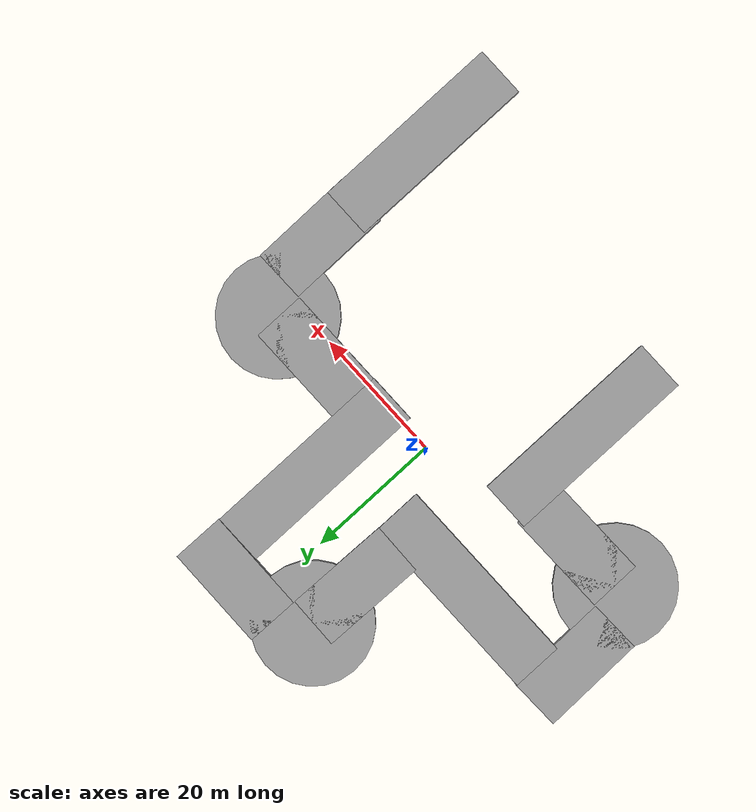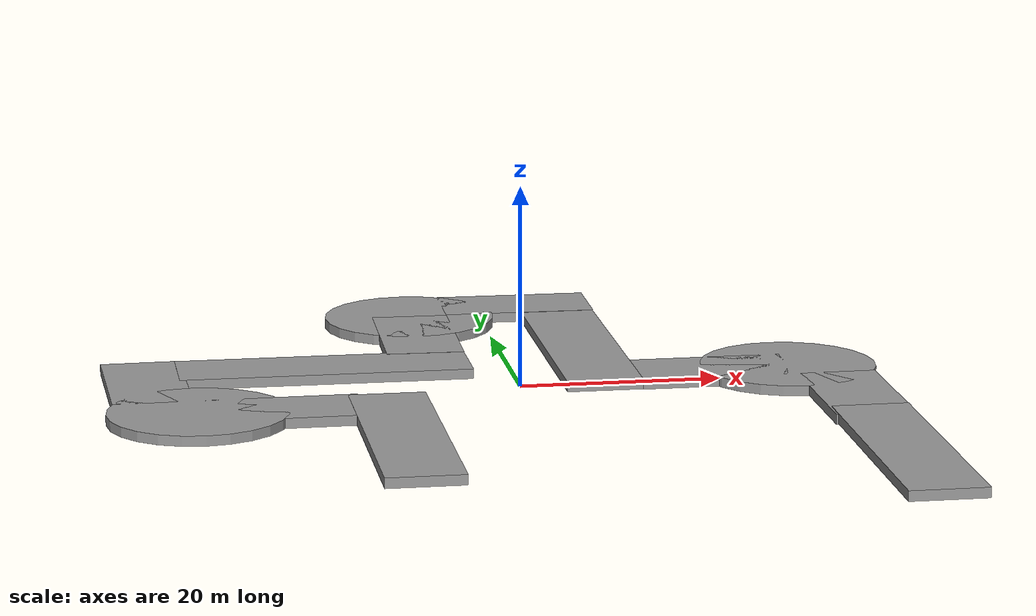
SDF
<?xml version='1.0'?>
<sdf version='1.6'>
  <model name='NEW_TRACK'>
    <link name='link_0'>
      <inertial>
        <mass>222.524</mass>
        <inertia>
          <ixx>15902.8</ixx>
          <ixy>0</ixy>
          <ixz>0</ixz>
          <iyy>1090.4</iyy>
          <iyz>0</iyz>
          <izz>16956.1</izz>
        </inertia>
        <pose frame=''>0 0 0 0 -0 0</pose>
      </inertial>
      <pose frame=''>31.8618 -28.5418 0.008428 0 -0 0</pose>
      <visual name='visual'>
        <pose frame=''>0 0 0 0 -0 0</pose>
        <geometry>
          <box>
            <size>7.60273 29.2675 1</size>
          </box>
        </geometry>
        <material>
          <lighting>1</lighting>
          <script>
            <uri>file://media/materials/scripts/gazebo.material</uri>
            <name>Gazebo/Grey</name>
          </script>
          <emissive>0 0 0 1</emissive>
        </material>
        <transparency>0</transparency>
        <cast_shadows>1</cast_shadows>
      </visual>
      <collision name='collision'>
        <laser_retro>0</laser_retro>
        <max_contacts>10</max_contacts>
        <pose frame=''>0 0 0 0 -0 0</pose>
        <geometry>
          <box>
            <size>7.60273 29.2675 1</size>
          </box>
        </geometry>
        <surface>
          <friction>
            <ode>
              <mu>1</mu>
              <mu2>1</mu2>
              <fdir1>0 0 0</fdir1>
              <slip1>0</slip1>
              <slip2>0</slip2>
            </ode>
            <torsional>
              <coefficient>1</coefficient>
              <patch_radius>0</patch_radius>
              <surface_radius>0</surface_radius>
              <use_patch_radius>1</use_patch_radius>
              <ode>
                <slip>0</slip>
              </ode>
            </torsional>
          </friction>
          <bounce>
            <restitution_coefficient>0</restitution_coefficient>
            <threshold>1e+06</threshold>
          </bounce>
          <contact>
            <collide_without_contact>0</collide_without_contact>
            <collide_without_contact_bitmask>1</collide_without_contact_bitmask>
            <collide_bitmask>1</collide_bitmask>
            <ode>
              <soft_cfm>0</soft_cfm>
              <soft_erp>0.2</soft_erp>
              <kp>1e+13</kp>
              <kd>1</kd>
              <max_vel>0.01</max_vel>
              <min_depth>0</min_depth>
            </ode>
            <bullet>
              <split_impulse>1</split_impulse>
              <split_impulse_penetration_threshold>-0.01</split_impulse_penetration_threshold>
              <soft_cfm>0</soft_cfm>
              <soft_erp>0.2</soft_erp>
              <kp>1e+13</kp>
              <kd>1</kd>
            </bullet>
          </contact>
        </surface>
      </collision>
    </link>
    <link name='link_0_clone'>
      <inertial>
        <mass>222.524</mass>
        <inertia>
          <ixx>15902.8</ixx>
          <ixy>0</ixy>
          <ixz>0</ixz>
          <iyy>1090.4</iyy>
          <iyz>0</iyz>
          <izz>16956.1</izz>
        </inertia>
        <pose frame=''>0 0 0 0 -0 0</pose>
      </inertial>
      <pose frame=''>8.3265 13.4462 0.008428 0 -0 0</pose>
      <visual name='visual'>
        <pose frame=''>0 0 0 0 -0 0</pose>
        <geometry>
          <box>
            <size>7.60273 29.2675 1</size>
          </box>
        </geometry>
        <material>
          <lighting>1</lighting>
          <script>
            <uri>file://media/materials/scripts/gazebo.material</uri>
            <name>Gazebo/Grey</name>
          </script>
          <shader type='pixel'/>
          <emissive>0 0 0 1</emissive>
        </material>
        <transparency>0</transparency>
        <cast_shadows>1</cast_shadows>
      </visual>
      <collision name='collision'>
        <laser_retro>0</laser_retro>
        <max_contacts>10</max_contacts>
        <pose frame=''>0 0 0 0 -0 0</pose>
        <geometry>
          <box>
            <size>7.60273 29.2675 1</size>
          </box>
        </geometry>
        <surface>
          <friction>
            <ode>
              <mu>1</mu>
              <mu2>1</mu2>
              <fdir1>0 0 0</fdir1>
              <slip1>0</slip1>
              <slip2>0</slip2>
            </ode>
            <torsional>
              <coefficient>1</coefficient>
              <patch_radius>0</patch_radius>
              <surface_radius>0</surface_radius>
              <use_patch_radius>1</use_patch_radius>
              <ode>
                <slip>0</slip>
              </ode>
            </torsional>
          </friction>
          <bounce>
            <restitution_coefficient>0</restitution_coefficient>
            <threshold>1e+06</threshold>
          </bounce>
          <contact>
            <collide_without_contact>0</collide_without_contact>
            <collide_without_contact_bitmask>1</collide_without_contact_bitmask>
            <collide_bitmask>1</collide_bitmask>
            <ode>
              <soft_cfm>0</soft_cfm>
              <soft_erp>0.2</soft_erp>
              <kp>1e+13</kp>
              <kd>1</kd>
              <max_vel>0.01</max_vel>
              <min_depth>0</min_depth>
            </ode>
            <bullet>
              <split_impulse>1</split_impulse>
              <split_impulse_penetration_threshold>-0.01</split_impulse_penetration_threshold>
              <soft_cfm>0</soft_cfm>
              <soft_erp>0.2</soft_erp>
              <kp>1e+13</kp>
              <kd>1</kd>
            </bullet>
          </contact>
        </surface>
      </collision>
    </link>
    <link name='link_0_clone_0'>
      <inertial>
        <mass>222.524</mass>
        <inertia>
          <ixx>15902.8</ixx>
          <ixy>0</ixy>
          <ixz>0</ixz>
          <iyy>1090.4</iyy>
          <iyz>0</iyz>
          <izz>16956.1</izz>
        </inertia>
        <pose frame=''>0 0 0 0 -0 0</pose>
      </inertial>
      <pose frame=''>-18.4829 9.17909 0.008428 0 -0 1.5707</pose>
      <gravity>1</gravity>
      <self_collide>0</self_collide>
      <kinematic>0</kinematic>
      <enable_wind>0</enable_wind>
      <visual name='visual'>
        <pose frame=''>0 0 0 0 -0 0</pose>
        <geometry>
          <box>
            <size>7.60273 29.2675 1</size>
          </box>
        </geometry>
        <material>
          <lighting>1</lighting>
          <script>
            <uri>file://media/materials/scripts/gazebo.material</uri>
            <name>Gazebo/Grey</name>
          </script>
          <shader type='vertex'>
            <normal_map>__default__</normal_map>
          </shader>
          <ambient>0.3 0.3 0.3 1</ambient>
          <diffuse>0.7 0.7 0.7 1</diffuse>
          <specular>0.01 0.01 0.01 1</specular>
          <emissive>0 0 0 1</emissive>
        </material>
        <transparency>0</transparency>
        <cast_shadows>1</cast_shadows>
      </visual>
      <collision name='collision'>
        <laser_retro>0</laser_retro>
        <max_contacts>10</max_contacts>
        <pose frame=''>0 0 0 0 -0 0</pose>
        <geometry>
          <box>
            <size>7.60273 29.2675 1</size>
          </box>
        </geometry>
        <surface>
          <friction>
            <ode>
              <mu>1</mu>
              <mu2>1</mu2>
              <fdir1>0 0 0</fdir1>
              <slip1>0</slip1>
              <slip2>0</slip2>
            </ode>
            <torsional>
              <coefficient>1</coefficient>
              <patch_radius>0</patch_radius>
              <surface_radius>0</surface_radius>
              <use_patch_radius>1</use_patch_radius>
              <ode>
                <slip>0</slip>
              </ode>
            </torsional>
          </friction>
          <bounce>
            <restitution_coefficient>0</restitution_coefficient>
            <threshold>1e+06</threshold>
          </bounce>
          <contact>
            <collide_without_contact>0</collide_without_contact>
            <collide_without_contact_bitmask>1</collide_without_contact_bitmask>
            <collide_bitmask>1</collide_bitmask>
            <ode>
              <soft_cfm>0</soft_cfm>
              <soft_erp>0.2</soft_erp>
              <kp>1e+13</kp>
              <kd>1</kd>
              <max_vel>0.01</max_vel>
              <min_depth>0</min_depth>
            </ode>
            <bullet>
              <split_impulse>1</split_impulse>
              <split_impulse_penetration_threshold>-0.01</split_impulse_penetration_threshold>
              <soft_cfm>0</soft_cfm>
              <soft_erp>0.2</soft_erp>
              <kp>1e+13</kp>
              <kd>1</kd>
            </bullet>
          </contact>
        </surface>
      </collision>
    </link>
    <link name='link_0_clone_1'>
      <inertial>
        <mass>222.524</mass>
        <inertia>
          <ixx>15902.8</ixx>
          <ixy>0</ixy>
          <ixz>0</ixz>
          <iyy>1090.4</iyy>
          <iyz>0</iyz>
          <izz>16956.1</izz>
        </inertia>
        <pose frame=''>0 0 0 0 -0 0</pose>
      </inertial>
      <pose frame=''>-13.5537 -17.3093 0.008428 0 -0 0</pose>
      <gravity>1</gravity>
      <self_collide>0</self_collide>
      <kinematic>0</kinematic>
      <enable_wind>0</enable_wind>
      <visual name='visual'>
        <pose frame=''>0 0 0 0 -0 0</pose>
        <geometry>
          <box>
            <size>7.60273 29.2675 1</size>
          </box>
        </geometry>
        <material>
          <lighting>1</lighting>
          <script>
            <uri>file://media/materials/scripts/gazebo.material</uri>
            <name>Gazebo/Grey</name>
          </script>
          <shader type='vertex'>
            <normal_map>__default__</normal_map>
          </shader>
          <emissive>0 0 0 1</emissive>
        </material>
        <transparency>0</transparency>
        <cast_shadows>1</cast_shadows>
      </visual>
      <collision name='collision'>
        <laser_retro>0</laser_retro>
        <max_contacts>10</max_contacts>
        <pose frame=''>0 0 0 0 -0 0</pose>
        <geometry>
          <box>
            <size>7.60273 29.2675 1</size>
          </box>
        </geometry>
        <surface>
          <friction>
            <ode>
              <mu>1</mu>
              <mu2>1</mu2>
              <fdir1>0 0 0</fdir1>
              <slip1>0</slip1>
              <slip2>0</slip2>
            </ode>
            <torsional>
              <coefficient>1</coefficient>
              <patch_radius>0</patch_radius>
              <surface_radius>0</surface_radius>
              <use_patch_radius>1</use_patch_radius>
              <ode>
                <slip>0</slip>
              </ode>
            </torsional>
          </friction>
          <bounce>
            <restitution_coefficient>0</restitution_coefficient>
            <threshold>1e+06</threshold>
          </bounce>
          <contact>
            <collide_without_contact>0</collide_without_contact>
            <collide_without_contact_bitmask>1</collide_without_contact_bitmask>
            <collide_bitmask>1</collide_bitmask>
            <ode>
              <soft_cfm>0</soft_cfm>
              <soft_erp>0.2</soft_erp>
              <kp>1e+13</kp>
              <kd>1</kd>
              <max_vel>0.01</max_vel>
              <min_depth>0</min_depth>
            </ode>
            <bullet>
              <split_impulse>1</split_impulse>
              <split_impulse_penetration_threshold>-0.01</split_impulse_penetration_threshold>
              <soft_cfm>0</soft_cfm>
              <soft_erp>0.2</soft_erp>
              <kp>1e+13</kp>
              <kd>1</kd>
            </bullet>
          </contact>
        </surface>
      </collision>
    </link>
    <model name='track_1'>
      <link name='link_0'>
        <inertial>
          <mass>123.379</mass>
          <inertia>
            <ixx>646.144</ixx>
            <ixy>0</ixy>
            <ixz>0</ixz>
            <iyy>2541.04</iyy>
            <iyz>0</iyz>
            <izz>3166.62</izz>
          </inertia>
          <pose frame=''>0 15 0 0 -0 0</pose>
        </inertial>
        <pose frame=''>-6.66647 3.88767 0 0 -0 0</pose>
        <gravity>1</gravity>
        <self_collide>0</self_collide>
        <kinematic>0</kinematic>
        <enable_wind>0</enable_wind>
        <visual name='visual'>
          <pose frame=''>0 0 0 0 -0 0</pose>
          <geometry>
            <box>
              <size>15.689 7.86414 1</size>
            </box>
          </geometry>
          <material>
            <lighting>1</lighting>
            <script>
              <uri>file://media/materials/scripts/gazebo.material</uri>
              <name>Gazebo/Grey</name>
            </script>
            <shader type='vertex'>
              <normal_map>__default__</normal_map>
            </shader>
            <ambient>0.3 0.3 0.3 1</ambient>
            <diffuse>0.7 0.7 0.7 1</diffuse>
            <specular>0.01 0.01 0.01 1</specular>
            <emissive>0 0 0 1</emissive>
          </material>
          <transparency>0</transparency>
          <cast_shadows>1</cast_shadows>
        </visual>
        <collision name='collision'>
          <laser_retro>0</laser_retro>
          <max_contacts>10</max_contacts>
          <pose frame=''>0 0 0 0 -0 0</pose>
          <geometry>
            <box>
              <size>15.689 7.86414 1</size>
            </box>
          </geometry>
          <surface>
            <friction>
              <ode>
                <mu>1</mu>
                <mu2>1</mu2>
                <fdir1>0 0 0</fdir1>
                <slip1>0</slip1>
                <slip2>0</slip2>
              </ode>
              <torsional>
                <coefficient>1</coefficient>
                <patch_radius>0</patch_radius>
                <surface_radius>0</surface_radius>
                <use_patch_radius>1</use_patch_radius>
                <ode>
                  <slip>0</slip>
                </ode>
              </torsional>
            </friction>
            <bounce>
              <restitution_coefficient>0</restitution_coefficient>
              <threshold>1e+06</threshold>
            </bounce>
            <contact>
              <collide_without_contact>0</collide_without_contact>
              <collide_without_contact_bitmask>1</collide_without_contact_bitmask>
              <collide_bitmask>1</collide_bitmask>
              <ode>
                <soft_cfm>0</soft_cfm>
                <soft_erp>0.2</soft_erp>
                <kp>1e+13</kp>
                <kd>1</kd>
                <max_vel>0.01</max_vel>
                <min_depth>0</min_depth>
              </ode>
              <bullet>
                <split_impulse>1</split_impulse>
                <split_impulse_penetration_threshold>-0.01</split_impulse_penetration_threshold>
                <soft_cfm>0</soft_cfm>
                <soft_erp>0.2</soft_erp>
                <kp>1e+13</kp>
                <kd>1</kd>
              </bullet>
            </contact>
          </surface>
        </collision>
      </link>
      <link name='link_0_clone'>
        <inertial>
          <mass>123.379</mass>
          <inertia>
            <ixx>646.144</ixx>
            <ixy>0</ixy>
            <ixz>0</ixz>
            <iyy>2541.04</iyy>
            <iyz>0</iyz>
            <izz>3166.62</izz>
          </inertia>
          <pose frame=''>0 15 0 1.5707 -0 0</pose>
        </inertial>
        <pose frame=''>5.3982 -7.81709 0 0 0 -1.55979</pose>
        <gravity>1</gravity>
        <self_collide>0</self_collide>
        <kinematic>0</kinematic>
        <enable_wind>0</enable_wind>
        <visual name='visual'>
          <pose frame=''>0 0 0 0 -0 0</pose>
          <geometry>
            <box>
              <size>15.689 7.86414 1</size>
            </box>
          </geometry>
          <material>
            <lighting>1</lighting>
            <script>
              <uri>file://media/materials/scripts/gazebo.material</uri>
              <name>Gazebo/Grey</name>
            </script>
            <shader type='vertex'>
              <normal_map>__default__</normal_map>
            </shader>
            <ambient>0.3 0.3 0.3 1</ambient>
            <diffuse>0.7 0.7 0.7 1</diffuse>
            <specular>0.01 0.01 0.01 1</specular>
            <emissive>0 0 0 1</emissive>
          </material>
          <transparency>0</transparency>
          <cast_shadows>1</cast_shadows>
        </visual>
        <collision name='collision'>
          <laser_retro>0</laser_retro>
          <max_contacts>10</max_contacts>
          <pose frame=''>0 0 0 0 -0 0</pose>
          <geometry>
            <box>
              <size>15.689 7.86414 1</size>
            </box>
          </geometry>
          <surface>
            <friction>
              <ode>
                <mu>1</mu>
                <mu2>1</mu2>
                <fdir1>0 0 0</fdir1>
                <slip1>0</slip1>
                <slip2>0</slip2>
              </ode>
              <torsional>
                <coefficient>1</coefficient>
                <patch_radius>0</patch_radius>
                <surface_radius>0</surface_radius>
                <use_patch_radius>1</use_patch_radius>
                <ode>
                  <slip>0</slip>
                </ode>
              </torsional>
            </friction>
            <bounce>
              <restitution_coefficient>0</restitution_coefficient>
              <threshold>1e+06</threshold>
            </bounce>
            <contact>
              <collide_without_contact>0</collide_without_contact>
              <collide_without_contact_bitmask>1</collide_without_contact_bitmask>
              <collide_bitmask>1</collide_bitmask>
              <ode>
                <soft_cfm>0</soft_cfm>
                <soft_erp>0.2</soft_erp>
                <kp>1e+13</kp>
                <kd>1</kd>
                <max_vel>0.01</max_vel>
                <min_depth>0</min_depth>
              </ode>
              <bullet>
                <split_impulse>1</split_impulse>
                <split_impulse_penetration_threshold>-0.01</split_impulse_penetration_threshold>
                <soft_cfm>0</soft_cfm>
                <soft_erp>0.2</soft_erp>
                <kp>1e+13</kp>
                <kd>1</kd>
              </bullet>
            </contact>
          </surface>
        </collision>
      </link>
      <link name='link_3'>
        <inertial>
          <mass>312.279</mass>
          <inertia>
            <ixx>6120.81</ixx>
            <ixy>0</ixy>
            <ixz>0</ixz>
            <iyy>6120.81</iyy>
            <iyz>0</iyz>
            <izz>12189.6</izz>
          </inertia>
          <pose frame=''>0 0 0 0 -0 0</pose>
        </inertial>
        <pose frame=''>1.2682 3.92944 0 0 -0 0</pose>
        <visual name='visual'>
          <pose frame=''>0 0 0 0 -0 0</pose>
          <geometry>
            <cylinder>
              <radius>8.83564</radius>
              <length>1</length>
            </cylinder>
          </geometry>
          <material>
            <lighting>1</lighting>
            <script>
              <uri>file://media/materials/scripts/gazebo.material</uri>
              <name>Gazebo/Grey</name>
            </script>
            <emissive>0 0 0 1</emissive>
          </material>
          <transparency>0</transparency>
          <cast_shadows>1</cast_shadows>
        </visual>
        <collision name='collision'>
          <laser_retro>0</laser_retro>
          <max_contacts>10</max_contacts>
          <pose frame=''>0 0 0 0 -0 0</pose>
          <geometry>
            <cylinder>
              <radius>8.83564</radius>
              <length>1</length>
            </cylinder>
          </geometry>
          <surface>
            <friction>
              <ode>
                <mu>1</mu>
                <mu2>1</mu2>
                <fdir1>0 0 0</fdir1>
                <slip1>0</slip1>
                <slip2>0</slip2>
              </ode>
              <torsional>
                <coefficient>1</coefficient>
                <patch_radius>0</patch_radius>
                <surface_radius>0</surface_radius>
                <use_patch_radius>1</use_patch_radius>
                <ode>
                  <slip>0</slip>
                </ode>
              </torsional>
            </friction>
            <bounce>
              <restitution_coefficient>0</restitution_coefficient>
              <threshold>1e+06</threshold>
            </bounce>
            <contact>
              <collide_without_contact>0</collide_without_contact>
              <collide_without_contact_bitmask>1</collide_without_contact_bitmask>
              <collide_bitmask>1</collide_bitmask>
              <ode>
                <soft_cfm>0</soft_cfm>
                <soft_erp>0.2</soft_erp>
                <kp>1e+13</kp>
                <kd>1</kd>
                <max_vel>0.01</max_vel>
                <min_depth>0</min_depth>
              </ode>
              <bullet>
                <split_impulse>1</split_impulse>
                <split_impulse_penetration_threshold>-0.01</split_impulse_penetration_threshold>
                <soft_cfm>0</soft_cfm>
                <soft_erp>0.2</soft_erp>
                <kp>1e+13</kp>
                <kd>1</kd>
              </bullet>
            </contact>
          </surface>
        </collision>
      </link>
      <joint name='link_0_JOINT_0' type='fixed'>
        <parent>link_0</parent>
        <child>link_3</child>
        <pose frame=''>0 0 0 0 -0 0</pose>
        <physics>
          <ode>
            <limit>
              <cfm>0</cfm>
              <erp>0.2</erp>
            </limit>
            <suspension>
              <cfm>0</cfm>
              <erp>0.2</erp>
            </suspension>
          </ode>
        </physics>
      </joint>
      <joint name='link_0_clone_JOINT_1' type='fixed'>
        <parent>link_0_clone</parent>
        <child>link_3</child>
        <pose frame=''>0 0 0 0 -0 0</pose>
        <physics>
          <ode>
            <limit>
              <cfm>0</cfm>
              <erp>0.2</erp>
            </limit>
            <suspension>
              <cfm>0</cfm>
              <erp>0.2</erp>
            </suspension>
          </ode>
        </physics>
      </joint>
      <static>0</static>
      <allow_auto_disable>1</allow_auto_disable>
      <pose frame=''>26.3044 -1.05509 -0.056459 0 -0 0</pose>
    </model>
    <model name='track_1_0'>
      <link name='link_0'>
        <inertial>
          <mass>123.379</mass>
          <inertia>
            <ixx>646.144</ixx>
            <ixy>0</ixy>
            <ixz>0</ixz>
            <iyy>2541.04</iyy>
            <iyz>0</iyz>
            <izz>3166.62</izz>
          </inertia>
          <pose frame=''>0 15 0 0 -0 0</pose>
        </inertial>
        <pose frame=''>-6.66647 3.88767 0 0 -0 0</pose>
        <gravity>1</gravity>
        <self_collide>0</self_collide>
        <kinematic>0</kinematic>
        <enable_wind>0</enable_wind>
        <visual name='visual'>
          <pose frame=''>0 0 0 0 -0 0</pose>
          <geometry>
            <box>
              <size>15.689 7.86414 1</size>
            </box>
          </geometry>
          <material>
            <lighting>1</lighting>
            <script>
              <uri>file://media/materials/scripts/gazebo.material</uri>
              <name>Gazebo/Grey</name>
            </script>
            <shader type='vertex'>
              <normal_map>__default__</normal_map>
            </shader>
            <ambient>0.3 0.3 0.3 1</ambient>
            <diffuse>0.7 0.7 0.7 1</diffuse>
            <specular>0.01 0.01 0.01 1</specular>
            <emissive>0 0 0 1</emissive>
          </material>
          <transparency>0</transparency>
          <cast_shadows>1</cast_shadows>
        </visual>
        <collision name='collision'>
          <laser_retro>0</laser_retro>
          <max_contacts>10</max_contacts>
          <pose frame=''>0 0 0 0 -0 0</pose>
          <geometry>
            <box>
              <size>15.689 7.86414 1</size>
            </box>
          </geometry>
          <surface>
            <friction>
              <ode>
                <mu>1</mu>
                <mu2>1</mu2>
                <fdir1>0 0 0</fdir1>
                <slip1>0</slip1>
                <slip2>0</slip2>
              </ode>
              <torsional>
                <coefficient>1</coefficient>
                <patch_radius>0</patch_radius>
                <surface_radius>0</surface_radius>
                <use_patch_radius>1</use_patch_radius>
                <ode>
                  <slip>0</slip>
                </ode>
              </torsional>
            </friction>
            <bounce>
              <restitution_coefficient>0</restitution_coefficient>
              <threshold>1e+06</threshold>
            </bounce>
            <contact>
              <collide_without_contact>0</collide_without_contact>
              <collide_without_contact_bitmask>1</collide_without_contact_bitmask>
              <collide_bitmask>1</collide_bitmask>
              <ode>
                <soft_cfm>0</soft_cfm>
                <soft_erp>0.2</soft_erp>
                <kp>1e+13</kp>
                <kd>1</kd>
                <max_vel>0.01</max_vel>
                <min_depth>0</min_depth>
              </ode>
              <bullet>
                <split_impulse>1</split_impulse>
                <split_impulse_penetration_threshold>-0.01</split_impulse_penetration_threshold>
                <soft_cfm>0</soft_cfm>
                <soft_erp>0.2</soft_erp>
                <kp>1e+13</kp>
                <kd>1</kd>
              </bullet>
            </contact>
          </surface>
        </collision>
      </link>
      <link name='link_0_clone'>
        <inertial>
          <mass>123.379</mass>
          <inertia>
            <ixx>646.144</ixx>
            <ixy>0</ixy>
            <ixz>0</ixz>
            <iyy>2541.04</iyy>
            <iyz>0</iyz>
            <izz>3166.62</izz>
          </inertia>
          <pose frame=''>0 15 0 1.5707 -0 0</pose>
        </inertial>
        <pose frame=''>5.3982 -7.81709 0 0 0 -1.55979</pose>
        <gravity>1</gravity>
        <self_collide>0</self_collide>
        <kinematic>0</kinematic>
        <enable_wind>0</enable_wind>
        <visual name='visual'>
          <pose frame=''>0 0 0 0 -0 0</pose>
          <geometry>
            <box>
              <size>15.689 7.86414 1</size>
            </box>
          </geometry>
          <material>
            <lighting>1</lighting>
            <script>
              <uri>file://media/materials/scripts/gazebo.material</uri>
              <name>Gazebo/Grey</name>
            </script>
            <shader type='vertex'>
              <normal_map>__default__</normal_map>
            </shader>
            <ambient>0.3 0.3 0.3 1</ambient>
            <diffuse>0.7 0.7 0.7 1</diffuse>
            <specular>0.01 0.01 0.01 1</specular>
            <emissive>0 0 0 1</emissive>
          </material>
          <transparency>0</transparency>
          <cast_shadows>1</cast_shadows>
        </visual>
        <collision name='collision'>
          <laser_retro>0</laser_retro>
          <max_contacts>10</max_contacts>
          <pose frame=''>0 0 0 0 -0 0</pose>
          <geometry>
            <box>
              <size>15.689 7.86414 1</size>
            </box>
          </geometry>
          <surface>
            <friction>
              <ode>
                <mu>1</mu>
                <mu2>1</mu2>
                <fdir1>0 0 0</fdir1>
                <slip1>0</slip1>
                <slip2>0</slip2>
              </ode>
              <torsional>
                <coefficient>1</coefficient>
                <patch_radius>0</patch_radius>
                <surface_radius>0</surface_radius>
                <use_patch_radius>1</use_patch_radius>
                <ode>
                  <slip>0</slip>
                </ode>
              </torsional>
            </friction>
            <bounce>
              <restitution_coefficient>0</restitution_coefficient>
              <threshold>1e+06</threshold>
            </bounce>
            <contact>
              <collide_without_contact>0</collide_without_contact>
              <collide_without_contact_bitmask>1</collide_without_contact_bitmask>
              <collide_bitmask>1</collide_bitmask>
              <ode>
                <soft_cfm>0</soft_cfm>
                <soft_erp>0.2</soft_erp>
                <kp>1e+13</kp>
                <kd>1</kd>
                <max_vel>0.01</max_vel>
                <min_depth>0</min_depth>
              </ode>
              <bullet>
                <split_impulse>1</split_impulse>
                <split_impulse_penetration_threshold>-0.01</split_impulse_penetration_threshold>
                <soft_cfm>0</soft_cfm>
                <soft_erp>0.2</soft_erp>
                <kp>1e+13</kp>
                <kd>1</kd>
              </bullet>
            </contact>
          </surface>
        </collision>
      </link>
      <link name='link_3'>
        <inertial>
          <mass>312.279</mass>
          <inertia>
            <ixx>6120.81</ixx>
            <ixy>0</ixy>
            <ixz>0</ixz>
            <iyy>6120.81</iyy>
            <iyz>0</iyz>
            <izz>12189.6</izz>
          </inertia>
          <pose frame=''>0 0 0 0 -0 0</pose>
        </inertial>
        <pose frame=''>1.2682 3.92944 0 0 -0 0</pose>
        <visual name='visual'>
          <pose frame=''>0 0 0 0 -0 0</pose>
          <geometry>
            <cylinder>
              <radius>8.83564</radius>
              <length>1</length>
            </cylinder>
          </geometry>
          <material>
            <lighting>1</lighting>
            <script>
              <uri>file://media/materials/scripts/gazebo.material</uri>
              <name>Gazebo/Grey</name>
            </script>
            <emissive>0 0 0 1</emissive>
          </material>
          <transparency>0</transparency>
          <cast_shadows>1</cast_shadows>
        </visual>
        <collision name='collision'>
          <laser_retro>0</laser_retro>
          <max_contacts>10</max_contacts>
          <pose frame=''>0 0 0 0 -0 0</pose>
          <geometry>
            <cylinder>
              <radius>8.83564</radius>
              <length>1</length>
            </cylinder>
          </geometry>
          <surface>
            <friction>
              <ode>
                <mu>1</mu>
                <mu2>1</mu2>
                <fdir1>0 0 0</fdir1>
                <slip1>0</slip1>
                <slip2>0</slip2>
              </ode>
              <torsional>
                <coefficient>1</coefficient>
                <patch_radius>0</patch_radius>
                <surface_radius>0</surface_radius>
                <use_patch_radius>1</use_patch_radius>
                <ode>
                  <slip>0</slip>
                </ode>
              </torsional>
            </friction>
            <bounce>
              <restitution_coefficient>0</restitution_coefficient>
              <threshold>1e+06</threshold>
            </bounce>
            <contact>
              <collide_without_contact>0</collide_without_contact>
              <collide_without_contact_bitmask>1</collide_without_contact_bitmask>
              <collide_bitmask>1</collide_bitmask>
              <ode>
                <soft_cfm>0</soft_cfm>
                <soft_erp>0.2</soft_erp>
                <kp>1e+13</kp>
                <kd>1</kd>
                <max_vel>0.01</max_vel>
                <min_depth>0</min_depth>
              </ode>
              <bullet>
                <split_impulse>1</split_impulse>
                <split_impulse_penetration_threshold>-0.01</split_impulse_penetration_threshold>
                <soft_cfm>0</soft_cfm>
                <soft_erp>0.2</soft_erp>
                <kp>1e+13</kp>
                <kd>1</kd>
              </bullet>
            </contact>
          </surface>
        </collision>
      </link>
      <joint name='link_0_JOINT_0' type='fixed'>
        <parent>link_0</parent>
        <child>link_3</child>
        <pose frame=''>0 0 0 0 -0 0</pose>
        <physics>
          <ode>
            <limit>
              <cfm>0</cfm>
              <erp>0.2</erp>
            </limit>
            <suspension>
              <cfm>0</cfm>
              <erp>0.2</erp>
            </suspension>
          </ode>
        </physics>
      </joint>
      <joint name='link_0_clone_JOINT_1' type='fixed'>
        <parent>link_0_clone</parent>
        <child>link_3</child>
        <pose frame=''>0 0 0 0 -0 0</pose>
        <physics>
          <ode>
            <limit>
              <cfm>0</cfm>
              <erp>0.2</erp>
            </limit>
            <suspension>
              <cfm>0</cfm>
              <erp>0.2</erp>
            </suspension>
          </ode>
        </physics>
      </joint>
      <static>0</static>
      <allow_auto_disable>1</allow_auto_disable>
      <pose frame=''>-3.53672 26.8902 0.020301 0 -0 1.54875</pose>
    </model>
    <model name='track_1_1'>
      <link name='link_0'>
        <inertial>
          <mass>123.379</mass>
          <inertia>
            <ixx>646.144</ixx>
            <ixy>0</ixy>
            <ixz>0</ixz>
            <iyy>2541.04</iyy>
            <iyz>0</iyz>
            <izz>3166.62</izz>
          </inertia>
          <pose frame=''>0 15 0 0 -0 0</pose>
        </inertial>
        <pose frame=''>-6.66647 3.88767 0 0 -0 0</pose>
        <gravity>1</gravity>
        <self_collide>0</self_collide>
        <kinematic>0</kinematic>
        <enable_wind>0</enable_wind>
        <visual name='visual'>
          <pose frame=''>0 0 0 0 -0 0</pose>
          <geometry>
            <box>
              <size>15.689 7.86414 1</size>
            </box>
          </geometry>
          <material>
            <lighting>1</lighting>
            <script>
              <uri>file://media/materials/scripts/gazebo.material</uri>
              <name>Gazebo/Grey</name>
            </script>
            <shader type='vertex'>
              <normal_map>__default__</normal_map>
            </shader>
            <ambient>0.3 0.3 0.3 1</ambient>
            <diffuse>0.7 0.7 0.7 1</diffuse>
            <specular>0.01 0.01 0.01 1</specular>
            <emissive>0 0 0 1</emissive>
          </material>
          <transparency>0</transparency>
          <cast_shadows>1</cast_shadows>
        </visual>
        <collision name='collision'>
          <laser_retro>0</laser_retro>
          <max_contacts>10</max_contacts>
          <pose frame=''>0 0 0 0 -0 0</pose>
          <geometry>
            <box>
              <size>15.689 7.86414 1</size>
            </box>
          </geometry>
          <surface>
            <friction>
              <ode>
                <mu>1</mu>
                <mu2>1</mu2>
                <fdir1>0 0 0</fdir1>
                <slip1>0</slip1>
                <slip2>0</slip2>
              </ode>
              <torsional>
                <coefficient>1</coefficient>
                <patch_radius>0</patch_radius>
                <surface_radius>0</surface_radius>
                <use_patch_radius>1</use_patch_radius>
                <ode>
                  <slip>0</slip>
                </ode>
              </torsional>
            </friction>
            <bounce>
              <restitution_coefficient>0</restitution_coefficient>
              <threshold>1e+06</threshold>
            </bounce>
            <contact>
              <collide_without_contact>0</collide_without_contact>
              <collide_without_contact_bitmask>1</collide_without_contact_bitmask>
              <collide_bitmask>1</collide_bitmask>
              <ode>
                <soft_cfm>0</soft_cfm>
                <soft_erp>0.2</soft_erp>
                <kp>1e+13</kp>
                <kd>1</kd>
                <max_vel>0.01</max_vel>
                <min_depth>0</min_depth>
              </ode>
              <bullet>
                <split_impulse>1</split_impulse>
                <split_impulse_penetration_threshold>-0.01</split_impulse_penetration_threshold>
                <soft_cfm>0</soft_cfm>
                <soft_erp>0.2</soft_erp>
                <kp>1e+13</kp>
                <kd>1</kd>
              </bullet>
            </contact>
          </surface>
        </collision>
      </link>
      <link name='link_0_clone'>
        <inertial>
          <mass>123.379</mass>
          <inertia>
            <ixx>646.144</ixx>
            <ixy>0</ixy>
            <ixz>0</ixz>
            <iyy>2541.04</iyy>
            <iyz>0</iyz>
            <izz>3166.62</izz>
          </inertia>
          <pose frame=''>0 15 0 1.5707 -0 0</pose>
        </inertial>
        <pose frame=''>5.3982 -7.81709 0 0 0 -1.55979</pose>
        <gravity>1</gravity>
        <self_collide>0</self_collide>
        <kinematic>0</kinematic>
        <enable_wind>0</enable_wind>
        <visual name='visual'>
          <pose frame=''>0 0 0 0 -0 0</pose>
          <geometry>
            <box>
              <size>15.689 7.86414 1</size>
            </box>
          </geometry>
          <material>
            <lighting>1</lighting>
            <script>
              <uri>file://media/materials/scripts/gazebo.material</uri>
              <name>Gazebo/Grey</name>
            </script>
            <shader type='vertex'>
              <normal_map>__default__</normal_map>
            </shader>
            <ambient>0.3 0.3 0.3 1</ambient>
            <diffuse>0.7 0.7 0.7 1</diffuse>
            <specular>0.01 0.01 0.01 1</specular>
            <emissive>0 0 0 1</emissive>
          </material>
          <transparency>0</transparency>
          <cast_shadows>1</cast_shadows>
        </visual>
        <collision name='collision'>
          <laser_retro>0</laser_retro>
          <max_contacts>10</max_contacts>
          <pose frame=''>0 0 0 0 -0 0</pose>
          <geometry>
            <box>
              <size>15.689 7.86414 1</size>
            </box>
          </geometry>
          <surface>
            <friction>
              <ode>
                <mu>1</mu>
                <mu2>1</mu2>
                <fdir1>0 0 0</fdir1>
                <slip1>0</slip1>
                <slip2>0</slip2>
              </ode>
              <torsional>
                <coefficient>1</coefficient>
                <patch_radius>0</patch_radius>
                <surface_radius>0</surface_radius>
                <use_patch_radius>1</use_patch_radius>
                <ode>
                  <slip>0</slip>
                </ode>
              </torsional>
            </friction>
            <bounce>
              <restitution_coefficient>0</restitution_coefficient>
              <threshold>1e+06</threshold>
            </bounce>
            <contact>
              <collide_without_contact>0</collide_without_contact>
              <collide_without_contact_bitmask>1</collide_without_contact_bitmask>
              <collide_bitmask>1</collide_bitmask>
              <ode>
                <soft_cfm>0</soft_cfm>
                <soft_erp>0.2</soft_erp>
                <kp>1e+13</kp>
                <kd>1</kd>
                <max_vel>0.01</max_vel>
                <min_depth>0</min_depth>
              </ode>
              <bullet>
                <split_impulse>1</split_impulse>
                <split_impulse_penetration_threshold>-0.01</split_impulse_penetration_threshold>
                <soft_cfm>0</soft_cfm>
                <soft_erp>0.2</soft_erp>
                <kp>1e+13</kp>
                <kd>1</kd>
              </bullet>
            </contact>
          </surface>
        </collision>
      </link>
      <link name='link_3'>
        <inertial>
          <mass>312.279</mass>
          <inertia>
            <ixx>6120.81</ixx>
            <ixy>0</ixy>
            <ixz>0</ixz>
            <iyy>6120.81</iyy>
            <iyz>0</iyz>
            <izz>12189.6</izz>
          </inertia>
          <pose frame=''>0 0 0 0 -0 0</pose>
        </inertial>
        <pose frame=''>1.2682 3.92944 0 0 -0 0</pose>
        <visual name='visual'>
          <pose frame=''>0 0 0 0 -0 0</pose>
          <geometry>
            <cylinder>
              <radius>8.83564</radius>
              <length>1</length>
            </cylinder>
          </geometry>
          <material>
            <lighting>1</lighting>
            <script>
              <uri>file://media/materials/scripts/gazebo.material</uri>
              <name>Gazebo/Grey</name>
            </script>
            <emissive>0 0 0 1</emissive>
          </material>
          <transparency>0</transparency>
          <cast_shadows>1</cast_shadows>
        </visual>
        <collision name='collision'>
          <laser_retro>0</laser_retro>
          <max_contacts>10</max_contacts>
          <pose frame=''>0 0 0 0 -0 0</pose>
          <geometry>
            <cylinder>
              <radius>8.83564</radius>
              <length>1</length>
            </cylinder>
          </geometry>
          <surface>
            <friction>
              <ode>
                <mu>1</mu>
                <mu2>1</mu2>
                <fdir1>0 0 0</fdir1>
                <slip1>0</slip1>
                <slip2>0</slip2>
              </ode>
              <torsional>
                <coefficient>1</coefficient>
                <patch_radius>0</patch_radius>
                <surface_radius>0</surface_radius>
                <use_patch_radius>1</use_patch_radius>
                <ode>
                  <slip>0</slip>
                </ode>
              </torsional>
            </friction>
            <bounce>
              <restitution_coefficient>0</restitution_coefficient>
              <threshold>1e+06</threshold>
            </bounce>
            <contact>
              <collide_without_contact>0</collide_without_contact>
              <collide_without_contact_bitmask>1</collide_without_contact_bitmask>
              <collide_bitmask>1</collide_bitmask>
              <ode>
                <soft_cfm>0</soft_cfm>
                <soft_erp>0.2</soft_erp>
                <kp>1e+13</kp>
                <kd>1</kd>
                <max_vel>0.01</max_vel>
                <min_depth>0</min_depth>
              </ode>
              <bullet>
                <split_impulse>1</split_impulse>
                <split_impulse_penetration_threshold>-0.01</split_impulse_penetration_threshold>
                <soft_cfm>0</soft_cfm>
                <soft_erp>0.2</soft_erp>
                <kp>1e+13</kp>
                <kd>1</kd>
              </bullet>
            </contact>
          </surface>
        </collision>
      </link>
      <joint name='link_0_JOINT_0' type='fixed'>
        <parent>link_0</parent>
        <child>link_3</child>
        <pose frame=''>0 0 0 0 -0 0</pose>
        <physics>
          <ode>
            <limit>
              <cfm>0</cfm>
              <erp>0.2</erp>
            </limit>
            <suspension>
              <cfm>0</cfm>
              <erp>0.2</erp>
            </suspension>
          </ode>
        </physics>
      </joint>
      <joint name='link_0_clone_JOINT_1' type='fixed'>
        <parent>link_0_clone</parent>
        <child>link_3</child>
        <pose frame=''>0 0 0 0 -0 0</pose>
        <physics>
          <ode>
            <limit>
              <cfm>0</cfm>
              <erp>0.2</erp>
            </limit>
            <suspension>
              <cfm>0</cfm>
              <erp>0.2</erp>
            </suspension>
          </ode>
        </physics>
      </joint>
      <static>0</static>
      <allow_auto_disable>1</allow_auto_disable>
      <pose frame=''>-30.9194 -2.60939 0.002447 0 0 -3.1296</pose>
    </model>
    <joint name='link_0_JOINT_0' type='fixed'>
      <parent>link_0</parent>
      <child>track_1::link_0_clone</child>
      <pose frame=''>0 0 0 0 -0 0</pose>
      <physics>
        <ode>
          <limit>
            <cfm>0</cfm>
            <erp>0.2</erp>
          </limit>
          <suspension>
            <cfm>0</cfm>
            <erp>0.2</erp>
          </suspension>
        </ode>
      </physics>
    </joint>
    <joint name='link_0_clone_0_JOINT_4' type='fixed'>
      <parent>link_0_clone_0</parent>
      <child>track_1_1::link_0_clone</child>
      <pose frame=''>0 0 0 0 -0 0</pose>
      <physics>
        <ode>
          <limit>
            <cfm>0</cfm>
            <erp>0.2</erp>
          </limit>
          <suspension>
            <cfm>0</cfm>
            <erp>0.2</erp>
          </suspension>
        </ode>
      </physics>
    </joint>
    <joint name='link_0_clone_JOINT_2' type='fixed'>
      <parent>link_0_clone</parent>
      <child>track_1_0::link_0_clone</child>
      <pose frame=''>0 0 0 0 -0 0</pose>
      <physics>
        <ode>
          <limit>
            <cfm>0</cfm>
            <erp>0.2</erp>
          </limit>
          <suspension>
            <cfm>0</cfm>
            <erp>0.2</erp>
          </suspension>
        </ode>
      </physics>
    </joint>
    <joint name='link_0_JOINT_1' type='fixed'>
      <parent>track_1::link_0</parent>
      <child>link_0_clone</child>
      <pose frame=''>0 0 0 0 -0 0</pose>
      <physics>
        <ode>
          <limit>
            <cfm>0</cfm>
            <erp>0.2</erp>
          </limit>
          <suspension>
            <cfm>0</cfm>
            <erp>0.2</erp>
          </suspension>
        </ode>
      </physics>
    </joint>
    <joint name='link_0_JOINT_3' type='fixed'>
      <parent>track_1_0::link_0</parent>
      <child>link_0_clone_0</child>
      <pose frame=''>0 0 0 0 -0 0</pose>
      <physics>
        <ode>
          <limit>
            <cfm>0</cfm>
            <erp>0.2</erp>
          </limit>
          <suspension>
            <cfm>0</cfm>
            <erp>0.2</erp>
          </suspension>
        </ode>
      </physics>
    </joint>
    <joint name='link_0_JOINT_5' type='fixed'>
      <parent>track_1_1::link_0</parent>
      <child>link_0_clone_1</child>
      <pose frame=''>0 0 0 0 -0 0</pose>
      <physics>
        <ode>
          <limit>
            <cfm>0</cfm>
            <erp>0.2</erp>
          </limit>
          <suspension>
            <cfm>0</cfm>
            <erp>0.2</erp>
          </suspension>
        </ode>
      </physics>
    </joint>
    <static>0</static>
    <allow_auto_disable>1</allow_auto_disable>
  </model>
</sdf>
